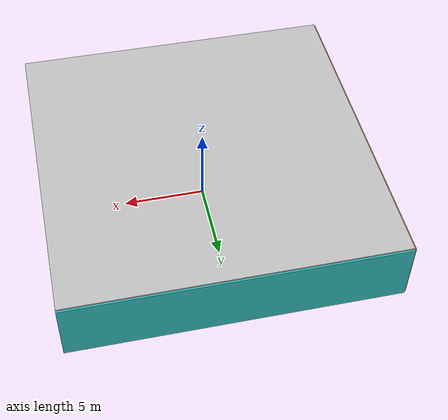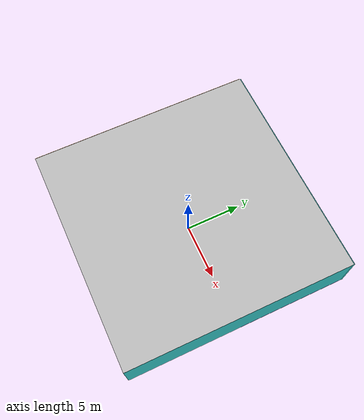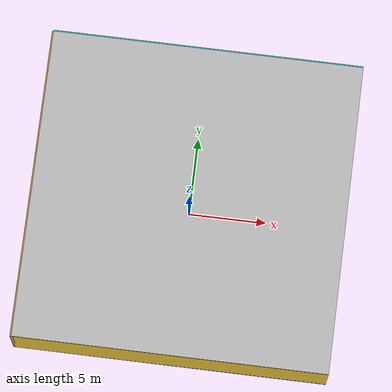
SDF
<sdf version="1.4">
 <world name="default">
  <physics type="ode">
   <max_step_size>0.001</max_step_size>
   <real_time_factor>1</real_time_factor>
   <real_time_update_rate>1000</real_time_update_rate>
   <gravity>0 0 -9.8</gravity>
  </physics>
  <scene><ambient>0.4 0.4 0.4 1</ambient><background>0.7 0.7 0.7 1</background><shadows>1</shadows></scene>
  <model name="Surrounding">
   <static>1</static>
   <link name="Ceiling">
    <collision name="Ceiling_Collision"><geometry><box><size>20 20 0.1</size></box></geometry></collision>
    <visual name="Ceiling_Visual">
     <geometry><box><size>20 20 0.1</size></box></geometry>
     <material>
      <script><uri>file://media/materials/scripts/gazebo.material</uri><name>Gazebo/JointAnchor</name></script>
     </material>
    </visual>
    <pose>0 0 4.05 0 0 0</pose>
   </link>
   <link name="Wall_South">
    <collision name="Wall_South_Collision">
     <geometry><box><size>20 0 4</size></box></geometry>
     <pose>0 0 2 0 -0 0</pose>
    </collision>
    <visual name="Wall_South_Visual">
     <pose>0 0 2 0 -0 0</pose>
     <geometry><box><size>20 0 4</size></box></geometry>
     <material>
      <script><uri>file://media/materials/scripts/gazebo.material</uri><name>Gazebo/Gold</name></script>
     </material>
    </visual>
    <velocity_decay><linear>0</linear><angular>0</angular></velocity_decay>
    <pose>0 -10 0 0 -0 0</pose>
   </link>
   <link name="Wall_East">
    <collision name="Wall_21_Collision">
     <geometry><box><size>20 0 4</size></box></geometry>
     <pose>0 0 2 0 -0 0</pose>
    </collision>
    <visual name="Wall_21_Visual">
     <pose>0 0 2 0 -0 0</pose>
     <geometry><box><size>20 0 4</size></box></geometry>
     <material>
      <script><uri>file://media/materials/scripts/gazebo.material</uri><name>Gazebo/TurquoiseGlow</name></script>
     </material>
    </visual>
    <velocity_decay><linear>0</linear><angular>0</angular></velocity_decay>
    <pose>10 0 0 0 -0 1.5708</pose>
   </link>
   <link name="Wall_North">
    <collision name="Wall_22_Collision">
     <geometry><box><size>20 0.2 4</size></box></geometry>
     <pose>0 0 2 0 -0 0</pose>
    </collision>
    <visual name="Wall_22_Visual">
     <pose>0 0 2 0 -0 0</pose>
     <geometry><box><size>20 0.2 4</size></box></geometry>
     <material>
      <script>
       <uri>file://media/materials/scripts/gazebo.material</uri>
       <name>Gazebo/TurquoiseGlowOutline</name>
      </script>
     </material>
    </visual>
    <velocity_decay><linear>0</linear><angular>0</angular></velocity_decay>
    <pose>0 10 0 0 -0 0</pose>
   </link>
   <link name="Wall_West">
    <collision name="Wall_23_Collision">
     <geometry><box><size>20 0.2 4</size></box></geometry>
     <pose>0 0 2 0 -0 0</pose>
    </collision>
    <visual name="Wall_23_Visual">
     <pose>0 0 2 0 -0 0</pose>
     <geometry><box><size>20 0.2 4</size></box></geometry>
     <material>
      <script><uri>file://media/materials/scripts/gazebo.material</uri><name>Gazebo/Wood</name></script>
     </material>
    </visual>
    <velocity_decay><linear>0</linear><angular>0</angular></velocity_decay>
    <pose>-10 0 0 0 0 -1.5708</pose>
   </link>
   <link name="Ground_link">
    <collision name="collision">
     <pose>0 0 .05 0 -0 0</pose>
     <geometry><box><size>20 20 0.1</size></box></geometry>
    </collision>
    <visual name="visual">
     <pose>0 0 .05 0 -0 0</pose>
     <geometry><box><size>20 20 0.1</size></box></geometry>
     <material>
      <script><uri>file://media/materials/scripts/gazebo.material</uri><name>Gazebo/BlueLaser</name></script>
     </material>
    </visual>
   </link>
   <static>1</static>
  </model>
  <spherical_coordinates>
   <surface_model>EARTH_WGS84</surface_model>
   <latitude_deg>0</latitude_deg>
   <longitude_deg>0</longitude_deg>
   <elevation>0</elevation>
   <heading_deg>0</heading_deg>
  </spherical_coordinates>
  <light name="lightball_0" type="diffuse">
   <diffuse>0.8 0.8 0.8 1</diffuse>
   <specular>0.2 0.2 0.2 1</specular>
   <attenuation>
    <range>100</range>
    <constant>0.7</constant>
    <linear>0.01</linear>
    <quadratic>0.001</quadratic>
   </attenuation>
   <direction>-0.5 0.1 -0.9</direction>
   <pose>-6.67109773195 -2.9479621562 0.754079617625 0 0 0</pose>
  </light>
  <light name="lightball_1" type="diffuse">
   <diffuse>0.8 0.8 0.8 1</diffuse>
   <specular>0.2 0.2 0.2 1</specular>
   <attenuation>
    <range>100</range>
    <constant>0.7</constant>
    <linear>0.01</linear>
    <quadratic>0.001</quadratic>
   </attenuation>
   <direction>-0.5 0.1 -0.9</direction>
   <pose>1.38868055515 9.34209366144 3.1630067408 0 0 0</pose>
  </light>
  <light name="lightball_2" type="diffuse">
   <diffuse>0.8 0.8 0.8 1</diffuse>
   <specular>0.2 0.2 0.2 1</specular>
   <attenuation>
    <range>100</range>
    <constant>0.7</constant>
    <linear>0.01</linear>
    <quadratic>0.001</quadratic>
   </attenuation>
   <direction>-0.5 0.1 -0.9</direction>
   <pose>6.3082762346 -7.39460760814 2.21620834111 0 0 0</pose>
  </light>
  <light name="lightball_3" type="diffuse">
   <diffuse>0.8 0.8 0.8 1</diffuse>
   <specular>0.2 0.2 0.2 1</specular>
   <attenuation>
    <range>100</range>
    <constant>0.7</constant>
    <linear>0.01</linear>
    <quadratic>0.001</quadratic>
   </attenuation>
   <direction>-0.5 0.1 -0.9</direction>
   <pose>3.48115852833 -2.4129081583 2.03081366377 0 0 0</pose>
  </light>
  <light name="lightball_4" type="diffuse">
   <diffuse>0.8 0.8 0.8 1</diffuse>
   <specular>0.2 0.2 0.2 1</specular>
   <attenuation>
    <range>100</range>
    <constant>0.7</constant>
    <linear>0.01</linear>
    <quadratic>0.001</quadratic>
   </attenuation>
   <direction>-0.5 0.1 -0.9</direction>
   <pose>8.77913786354 -5.28293383172 1.55489752227 0 0 0</pose>
  </light>
  <light name="lightball_5" type="diffuse">
   <diffuse>0.8 0.8 0.8 1</diffuse>
   <specular>0.2 0.2 0.2 1</specular>
   <attenuation>
    <range>100</range>
    <constant>0.7</constant>
    <linear>0.01</linear>
    <quadratic>0.001</quadratic>
   </attenuation>
   <direction>-0.5 0.1 -0.9</direction>
   <pose>-0.572251853932 -2.189263618 2.41978333969 0 0 0</pose>
  </light>
  <light name="lightball_6" type="diffuse">
   <diffuse>0.8 0.8 0.8 1</diffuse>
   <specular>0.2 0.2 0.2 1</specular>
   <attenuation>
    <range>100</range>
    <constant>0.7</constant>
    <linear>0.01</linear>
    <quadratic>0.001</quadratic>
   </attenuation>
   <direction>-0.5 0.1 -0.9</direction>
   <pose>5.14295184654 0.603326057035 2.50622819951 0 0 0</pose>
  </light>
  <light name="lightball_7" type="diffuse">
   <diffuse>0.8 0.8 0.8 1</diffuse>
   <specular>0.2 0.2 0.2 1</specular>
   <attenuation>
    <range>100</range>
    <constant>0.7</constant>
    <linear>0.01</linear>
    <quadratic>0.001</quadratic>
   </attenuation>
   <direction>-0.5 0.1 -0.9</direction>
   <pose>7.41365134673 8.51923665605 1.27539197329 0 0 0</pose>
  </light>
  <light name="lightball_8" type="diffuse">
   <diffuse>0.8 0.8 0.8 1</diffuse>
   <specular>0.2 0.2 0.2 1</specular>
   <attenuation>
    <range>100</range>
    <constant>0.7</constant>
    <linear>0.01</linear>
    <quadratic>0.001</quadratic>
   </attenuation>
   <direction>-0.5 0.1 -0.9</direction>
   <pose>-2.53479247615 -6.82512392195 2.81945943562 0 0 0</pose>
  </light>
  <include><uri>model://cabinet</uri><pose>-7.26060045677 -5.00337934851 0 0 0 2.28799556359</pose></include>
  <include><uri>model://table</uri><pose>1.28110927148 -3.87346817816 0 0 0 1.46862526574</pose></include>
  <include>
   <uri>model://textured_shapes</uri>
   <pose>1.56501208412 1.06151632664 0 0 0 1.18391754942</pose>
  </include>
  <include><uri>model://table</uri><pose>7.4546197519 5.05561613485 0 0 0 2.92995826709</pose></include>
 </world>
</sdf>

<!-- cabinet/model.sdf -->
<sdf version="1.5">
  <model name="cabinet">
    <static>true</static>
    <link name="cabinet_bottom_plate">
      <inertial>
        <pose>0 0 -1 0 0 0</pose>
        <inertia>
          <ixx>2.050000</ixx>
          <ixy>0</ixy>
          <ixz>0</ixz>
          <iyy>2.050000</iyy>
          <iyz>0</iyz>
          <izz>2.050000</izz>
        </inertia>
        <mass>25.000000</mass>
      </inertial>
      <collision name="cabinet_bottom_plate_geom">
        <pose>0 0 0.010000 0 0 0</pose>
        <geometry>
          <box>
            <size>0.450000 0.450000 0.020000</size>
          </box>
        </geometry>
      </collision>
      <visual name="cabinet_bottom_plate_geom_visual">
        <pose>0 0 0.010000 0 0 0</pose>
        <geometry>
          <box>
            <size>0.450000 0.450000 0.020000</size>
          </box>
        </geometry>
        <material>
          <script>
            <uri>model://media/materials/scripts/gazebo.material</uri>
            <name>Gazebo/Wood</name>
          </script>
        </material>
      </visual>
      <collision name="cabinet_bottom_plate_geom_cabinet_back_plate">
        <pose>0.235000 0 0.510000 0 0 0</pose>
        <geometry>
          <box>
            <size>0.020000 0.450000 1.020000</size>
          </box>
        </geometry>
      </collision>
      <visual name="cabinet_bottom_plate_geom_cabinet_back_plate_visual">
        <pose>0.235000 0 0.510000 0 0 0</pose>
        <geometry>
          <box>
            <size>0.020000 0.450000 1.020000</size>
          </box>
        </geometry>
        <material>
          <script>
            <uri>model://media/materials/scripts/gazebo.material</uri>
            <name>Gazebo/Wood</name>
          </script>
        </material>
      </visual>
      <collision name="cabinet_bottom_plate_geom_cabinet_left_plate">
        <pose>0 0.235000 0.510000 0 0 0</pose>
        <geometry>
          <box>
            <size>0.450000 0.020000 1.020000</size>
          </box>
        </geometry>
      </collision>
      <visual name="cabinet_bottom_plate_geom_cabinet_left_plate_visual">
        <pose>0 0.235000 0.510000 0 0 0</pose>
        <geometry>
          <box>
            <size>0.450000 0.020000 1.020000</size>
          </box>
        </geometry>
        <material>
          <script>
            <uri>model://media/materials/scripts/gazebo.material</uri>
            <name>Gazebo/Wood</name>
          </script>
        </material>
      </visual>
      <collision name="cabinet_bottom_plate_geom_cabinet_middle_plate">
        <pose>0 0 0.510000 0 0 0</pose>
        <geometry>
          <box>
            <size>0.450000 0.450000 0.020000</size>
          </box>
        </geometry>
      </collision>
      <visual name="cabinet_bottom_plate_geom_cabinet_middle_plate_visual">
        <pose>0 0 0.510000 0 0 0</pose>
        <geometry>
          <box>
            <size>0.450000 0.450000 0.020000</size>
          </box>
        </geometry>
        <material>
          <script>
            <uri>model://media/materials/scripts/gazebo.material</uri>
            <name>Gazebo/Wood</name>
          </script>
        </material>
      </visual>
      <collision name="cabinet_bottom_plate_geom_cabinet_right_plate">
        <pose>0 -0.235000 0.510000 0 0 0</pose>
        <geometry>
          <box>
            <size>0.450000 0.020000 1.020000</size>
          </box>
        </geometry>
      </collision>
      <visual name="cabinet_bottom_plate_geom_cabinet_right_plate_visual">
        <pose>0 -0.235000 0.510000 0 0 0</pose>
        <geometry>
          <box>
            <size>0.450000 0.020000 1.020000</size>
          </box>
        </geometry>
        <material>
          <script>
            <uri>model://media/materials/scripts/gazebo.material</uri>
            <name>Gazebo/Wood</name>
          </script>
        </material>
      </visual>
      <collision name="cabinet_bottom_plate_geom_cabinet_top_plate">
        <pose>0 0 1.010000 0 0 0</pose>
        <geometry>
          <box>
            <size>0.450000 0.450000 0.020000</size>
          </box>
        </geometry>
      </collision>
      <visual name="cabinet_bottom_plate_geom_cabinet_top_plate_visual">
        <pose>0 0 1.010000 0 0 0</pose>
        <geometry>
          <box>
            <size>0.450000 0.450000 0.020000</size>
          </box>
        </geometry>
        <material>
          <script>
            <uri>model://media/materials/scripts/gazebo.material</uri>
            <name>Gazebo/Wood</name>
          </script>
        </material>
      </visual>
    </link>
  </model>
</sdf>

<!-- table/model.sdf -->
<sdf version="1.5">
  <model name="table">
    <static>true</static>
    <link name="link">
      <collision name="surface">
        <pose>0 0 1.0 0 0 0</pose>
        <geometry>
          <box>
            <size>1.5 0.8 0.03</size>
          </box>
        </geometry>
        <surface>
          <friction>
            <ode>
              <mu>0.6</mu>
              <mu2>0.6</mu2>
            </ode>
          </friction>
        </surface>
      </collision>
      <visual name="visual1">
        <pose>0 0 1.0 0 0 0</pose>
        <geometry>
          <box>
            <size>1.5 0.8 0.03</size>
          </box>
        </geometry>
        <material>
          <script>
            <uri>model://media/materials/scripts/gazebo.material</uri>
            <name>Gazebo/Wood</name>
          </script>
        </material>
      </visual>
      <collision name="front_left_leg">
        <pose>0.68 0.38 0.5 0 0 0</pose>
        <geometry>
          <cylinder>
            <radius>0.02</radius>
            <length>1.0</length>
          </cylinder>
        </geometry>
      </collision>
      <visual name="front_left_leg">
        <pose>0.68 0.38 0.5 0 0 0</pose>
        <geometry>
          <cylinder>
            <radius>0.02</radius>
            <length>1.0</length>
          </cylinder>
        </geometry>
        <material>
          <script>
            <uri>model://media/materials/scripts/gazebo.material</uri>
            <name>Gazebo/Grey</name>
          </script>
        </material>
      </visual>
      <collision name="front_right_leg">
        <pose>0.68 -0.38 0.5 0 0 0</pose>
        <geometry>
          <cylinder>
            <radius>0.02</radius>
            <length>1.0</length>
          </cylinder>
        </geometry>
      </collision>
      <visual name="front_right_leg">
        <pose>0.68 -0.38 0.5 0 0 0</pose>
        <geometry>
          <cylinder>
            <radius>0.02</radius>
            <length>1.0</length>
          </cylinder>
        </geometry>
        <material>
          <script>
            <uri>model://media/materials/scripts/gazebo.material</uri>
            <name>Gazebo/Grey</name>
          </script>
        </material>
      </visual>
      <collision name="back_right_leg">
        <pose>-0.68 -0.38 0.5 0 0 0</pose>
        <geometry>
          <cylinder>
            <radius>0.02</radius>
            <length>1.0</length>
          </cylinder>
        </geometry>
      </collision>
      <visual name="back_right_leg">
        <pose>-0.68 -0.38 0.5 0 0 0</pose>
        <geometry>
          <cylinder>
            <radius>0.02</radius>
            <length>1.0</length>
          </cylinder>
        </geometry>
        <material>
          <script>
            <uri>model://media/materials/scripts/gazebo.material</uri>
            <name>Gazebo/Grey</name>
          </script>
        </material>
      </visual>
      <collision name="back_left_leg">
        <pose>-0.68 0.38 0.5 0 0 0</pose>
        <geometry>
          <cylinder>
            <radius>0.02</radius>
            <length>1.0</length>
          </cylinder>
        </geometry>
      </collision>
      <visual name="back_left_leg">
        <pose>-0.68 0.38 0.5 0 0 0</pose>
        <geometry>
          <cylinder>
            <radius>0.02</radius>
            <length>1.0</length>
          </cylinder>
        </geometry>
        <material>
          <script>
            <uri>model://media/materials/scripts/gazebo.material</uri>
            <name>Gazebo/Grey</name>
          </script>
        </material>
      </visual>
    </link>
  </model>
</sdf>

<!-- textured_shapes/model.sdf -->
<sdf version="1.6">
  <model name="textured_shapes">
    <pose>0 0 0.5 0 0 0</pose>
    <link name="box">
      <pose>0 -1.5 0 0 0 0</pose>
      <collision name="collision">
        <geometry>
          <box>
            <size>1 1 1</size>
          </box>
        </geometry>
      </collision>
      <visual name="visual">
        <geometry>
          <box>
            <size>1 1 1</size>
          </box>
        </geometry>
        <material>
          <script>
            <uri>model://../model_source/models/textured_shapes/materials/scripts</uri>
            <uri>model://../model_source/models/textured_shapes/materials/textures</uri>
            <name>TexturedShape/Squares</name>
          </script>
        </material>
      </visual>
    </link>
    <link name="sphere">
      <collision name="collision">
        <geometry>
          <sphere>
            <radius>0.5</radius>
          </sphere>
        </geometry>
      </collision>
      <visual name="visual">
        <geometry>
          <sphere>
            <radius>0.5</radius>
          </sphere>
        </geometry>
        <material>
          <script>
            <uri>model://../model_source/models/textured_shapes/materials/scripts</uri>
            <uri>model://../model_source/models/textured_shapes/materials/textures</uri>
            <name>TexturedShape/Squares</name>
          </script>
        </material>
      </visual>
    </link>
    <link name="cylinder">
      <pose>0 1.5 0 0 0 0</pose>
      <collision name="collision">
        <geometry>
          <cylinder>
            <radius>0.5</radius>
            <length>1</length>
          </cylinder>
        </geometry>
      </collision>
      <visual name="visual">
        <geometry>
          <cylinder>
            <radius>0.5</radius>
            <length>1</length>
          </cylinder>
        </geometry>
        <material>
          <script>
            <uri>model://../model_source/models/textured_shapes/materials/scripts</uri>
            <uri>model://../model_source/models/textured_shapes/materials/textures</uri>
            <name>TexturedShape/Squares</name>
          </script>
        </material>
      </visual>
    </link>
  </model>
</sdf>
